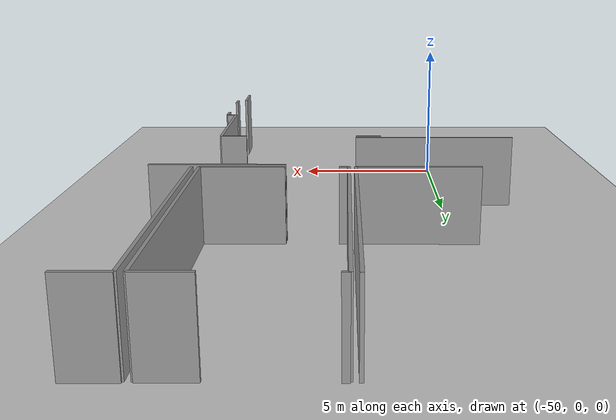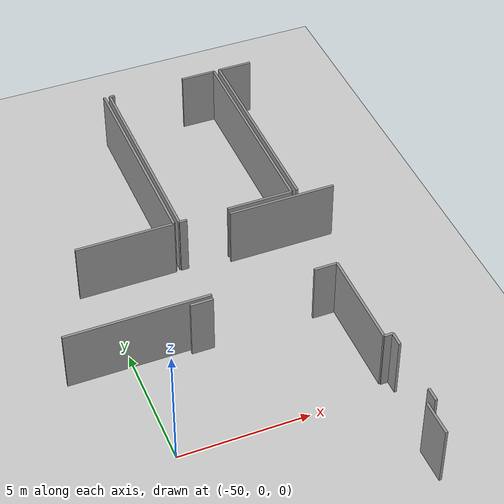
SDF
<sdf version="1.6">
 <world name="default">
  <model name="ground_plane">
   <static>1</static>
   <link name="link">
    <collision name="collision">
     <geometry><plane><normal>0 0 1</normal><size>100 100</size></plane></geometry>
     <surface><friction><ode><mu>100</mu><mu2>50</mu2></ode></friction></surface>
    </collision>
    <visual name="visual">
     <cast_shadows>0</cast_shadows>
     <geometry><plane><normal>0 0 1</normal><size>100 100</size></plane></geometry>
     <material>
      <script><uri>file://media/materials/scripts/gazebo.material</uri><name>Gazebo/Grey</name></script>
     </material>
    </visual>
   </link>
  </model>
  <model name="50041184">
   <static>1</static>
   <link name="Wall_5">
    <collision name="Wall_5_Collision">
     <geometry><box><size>5.56972470658 0.1 2.5</size></box></geometry>
     <pose>2.78486235329 0 1.25 0 0 0</pose>
    </collision>
    <visual name="Wall_5_Visual">
     <pose>2.78486235329 0 1.25 0 0 0</pose>
     <geometry><box><size>5.56972470658 0.1 2.5</size></box></geometry>
     <material>
      <script><uri>file://media/materials/scripts/gazebo.material</uri><name>Gazebo/Grey</name></script>
      <ambient>1 1 1 1</ambient>
     </material>
    </visual>
    <pose>24.684507525 -12.264743781 0 0 0 3.14159265359</pose>
   </link>
   <link name="Wall_11">
    <collision name="Wall_11_Collision">
     <geometry><box><size>4.26415980602 0.1 2.5</size></box></geometry>
     <pose>2.13207990301 0 1.25 0 0 0</pose>
    </collision>
    <visual name="Wall_11_Visual">
     <pose>2.13207990301 0 1.25 0 0 0</pose>
     <geometry><box><size>4.26415980602 0.1 2.5</size></box></geometry>
     <material>
      <script><uri>file://media/materials/scripts/gazebo.material</uri><name>Gazebo/Grey</name></script>
      <ambient>1 1 1 1</ambient>
     </material>
    </visual>
    <pose>26.8835541224 -8.50813439041 0 0 0 0.0</pose>
   </link>
   <link name="Wall_15">
    <collision name="Wall_15_Collision">
     <geometry><box><size>3.86972280232 0.1 2.5</size></box></geometry>
     <pose>1.93486140116 0 1.25 0 0 0</pose>
    </collision>
    <visual name="Wall_15_Visual">
     <pose>1.93486140116 0 1.25 0 0 0</pose>
     <geometry><box><size>3.86972280232 0.1 2.5</size></box></geometry>
     <material>
      <script><uri>file://media/materials/scripts/gazebo.material</uri><name>Gazebo/Grey</name></script>
      <ambient>1 1 1 1</ambient>
     </material>
    </visual>
    <pose>24.7281786963 -8.23836334668 0 0 0 3.14159265359</pose>
   </link>
   <link name="Wall_20">
    <collision name="Wall_20_Collision">
     <geometry><box><size>8.23838391209 0.1 2.5</size></box></geometry>
     <pose>4.11919195605 0 1.25 0 0 0</pose>
    </collision>
    <visual name="Wall_20_Visual">
     <pose>4.11919195605 0 1.25 0 0 0</pose>
     <geometry><box><size>8.23838391209 0.1 2.5</size></box></geometry>
     <material>
      <script><uri>file://media/materials/scripts/gazebo.material</uri><name>Gazebo/Grey</name></script>
      <ambient>1 1 1 1</ambient>
     </material>
    </visual>
    <pose>24.7097707898 -0.0 0 0 0 -1.56856191747</pose>
   </link>
   <link name="Wall_21">
    <collision name="Wall_21_Collision">
     <geometry><box><size>2.62306320259 0.1 2.5</size></box></geometry>
     <pose>1.3115316013 0 1.25 0 0 0</pose>
    </collision>
    <visual name="Wall_21_Visual">
     <pose>1.3115316013 0 1.25 0 0 0</pose>
     <geometry><box><size>2.62306320259 0.1 2.5</size></box></geometry>
     <material>
      <script><uri>file://media/materials/scripts/gazebo.material</uri><name>Gazebo/Grey</name></script>
      <ambient>1 1 1 1</ambient>
     </material>
    </visual>
    <pose>29.5191854819 -8.23036542868 0 0 0 3.14159265359</pose>
   </link>
   <link name="Wall_22">
    <collision name="Wall_22_Collision">
     <geometry><box><size>0.307348563231 0.1 2.5</size></box></geometry>
     <pose>0.153674281616 0 1.25 0 0 0</pose>
    </collision>
    <visual name="Wall_22_Visual">
     <pose>0.153674281616 0 1.25 0 0 0</pose>
     <geometry><box><size>0.307348563231 0.1 2.5</size></box></geometry>
     <material>
      <script><uri>file://media/materials/scripts/gazebo.material</uri><name>Gazebo/Grey</name></script>
      <ambient>1 1 1 1</ambient>
     </material>
    </visual>
    <pose>25.2467738557 -8.23036542868 0 0 0 3.14159265359</pose>
   </link>
   <link name="Wall_23">
    <collision name="Wall_23_Collision">
     <geometry><box><size>8.20269009337 0.1 2.5</size></box></geometry>
     <pose>4.10134504669 0 1.25 0 0 0</pose>
    </collision>
    <visual name="Wall_23_Visual">
     <pose>4.10134504669 0 1.25 0 0 0</pose>
     <geometry><box><size>8.20269009337 0.1 2.5</size></box></geometry>
     <material>
      <script><uri>file://media/materials/scripts/gazebo.material</uri><name>Gazebo/Grey</name></script>
      <ambient>1 1 1 1</ambient>
     </material>
    </visual>
    <pose>24.9394252925 -8.23036542868 0 0 0 1.57079632679</pose>
   </link>
   <link name="Wall_24">
    <collision name="Wall_24_Collision">
     <geometry><box><size>0.19525076012 0.1 2.5</size></box></geometry>
     <pose>0.0976253800598 0 1.25 0 0 0</pose>
    </collision>
    <visual name="Wall_24_Visual">
     <pose>0.0976253800598 0 1.25 0 0 0</pose>
     <geometry><box><size>0.19525076012 0.1 2.5</size></box></geometry>
     <material>
      <script><uri>file://media/materials/scripts/gazebo.material</uri><name>Gazebo/Grey</name></script>
      <ambient>1 1 1 1</ambient>
     </material>
    </visual>
    <pose>24.9394252925 -0.0276753353095 0 0 0 0.0</pose>
   </link>
   <link name="Wall_25">
    <collision name="Wall_25_Collision">
     <geometry><box><size>1.41829745907 0.1 2.5</size></box></geometry>
     <pose>0.709148729537 0 1.25 0 0 0</pose>
    </collision>
    <visual name="Wall_25_Visual">
     <pose>0.709148729537 0 1.25 0 0 0</pose>
     <geometry><box><size>1.41829745907 0.1 2.5</size></box></geometry>
     <material>
      <script><uri>file://media/materials/scripts/gazebo.material</uri><name>Gazebo/Grey</name></script>
      <ambient>1 1 1 1</ambient>
     </material>
    </visual>
    <pose>28.1010149739 -0.0276753353095 0 0 0 0.0</pose>
   </link>
   <link name="Wall_26">
    <collision name="Wall_26_Collision">
     <geometry><box><size>8.20269009435 0.1 2.5</size></box></geometry>
     <pose>4.10134504718 0 1.25 0 0 0</pose>
    </collision>
    <visual name="Wall_26_Visual">
     <pose>4.10134504718 0 1.25 0 0 0</pose>
     <geometry><box><size>8.20269009435 0.1 2.5</size></box></geometry>
     <material>
      <script><uri>file://media/materials/scripts/gazebo.material</uri><name>Gazebo/Grey</name></script>
      <ambient>1 1 1 1</ambient>
     </material>
    </visual>
    <pose>29.519312433 -0.0276753353095 0 0 0 -1.57081180356</pose>
   </link>
   <link name="Wall_29">
    <collision name="Wall_29_Collision">
     <geometry><box><size>8.20738728331 0.1 2.5</size></box></geometry>
     <pose>4.10369364166 0 1.25 0 0 0</pose>
    </collision>
    <visual name="Wall_29_Visual">
     <pose>4.10369364166 0 1.25 0 0 0</pose>
     <geometry><box><size>8.20738728331 0.1 2.5</size></box></geometry>
     <material>
      <script><uri>file://media/materials/scripts/gazebo.material</uri><name>Gazebo/Grey</name></script>
      <ambient>1 1 1 1</ambient>
     </material>
    </visual>
    <pose>29.7591230219 -8.22414482579 0 0 0 1.57079632679</pose>
   </link>
   <link name="Wall_30">
    <collision name="Wall_30_Collision">
     <geometry><box><size>1.37691140719 0.1 2.5</size></box></geometry>
     <pose>0.688455703595 0 1.25 0 0 0</pose>
    </collision>
    <visual name="Wall_30_Visual">
     <pose>0.688455703595 0 1.25 0 0 0</pose>
     <geometry><box><size>1.37691140719 0.1 2.5</size></box></geometry>
     <material>
      <script><uri>file://media/materials/scripts/gazebo.material</uri><name>Gazebo/Grey</name></script>
      <ambient>1 1 1 1</ambient>
     </material>
    </visual>
    <pose>29.7591230219 -0.016757542481 0 0 0 0.0</pose>
   </link>
   <link name="Wall_289">
    <collision name="Wall_289_Collision">
     <geometry><box><size>0.877231958665 0.1 2.5</size></box></geometry>
     <pose>0.438615979332 0 1.25 0 0 0</pose>
    </collision>
    <visual name="Wall_289_Visual">
     <pose>0.438615979332 0 1.25 0 0 0</pose>
     <geometry><box><size>0.877231958665 0.1 2.5</size></box></geometry>
     <material>
      <script><uri>file://media/materials/scripts/gazebo.material</uri><name>Gazebo/Grey</name></script>
      <ambient>1 1 1 1</ambient>
     </material>
    </visual>
    <pose>23.7849321764 -12.4776407411 0 0 0 0.0</pose>
   </link>
   <link name="Wall_290">
    <collision name="Wall_290_Collision">
     <geometry><box><size>0.909858386071 0.1 2.5</size></box></geometry>
     <pose>0.454929193035 0 1.25 0 0 0</pose>
    </collision>
    <visual name="Wall_290_Visual">
     <pose>0.454929193035 0 1.25 0 0 0</pose>
     <geometry><box><size>0.909858386071 0.1 2.5</size></box></geometry>
     <material>
      <script><uri>file://media/materials/scripts/gazebo.material</uri><name>Gazebo/Grey</name></script>
      <ambient>1 1 1 1</ambient>
     </material>
    </visual>
    <pose>28.5929504066 -12.4776407411 0 0 0 0.0</pose>
   </link>
   <link name="Wall_291">
    <collision name="Wall_291_Collision">
     <geometry><box><size>3.92012238084 0.1 2.5</size></box></geometry>
     <pose>1.96006119042 0 1.25 0 0 0</pose>
    </collision>
    <visual name="Wall_291_Visual">
     <pose>1.96006119042 0 1.25 0 0 0</pose>
     <geometry><box><size>3.92012238084 0.1 2.5</size></box></geometry>
     <material>
      <script><uri>file://media/materials/scripts/gazebo.material</uri><name>Gazebo/Grey</name></script>
      <ambient>1 1 1 1</ambient>
     </material>
    </visual>
    <pose>29.5028087926 -12.4776407411 0 0 0 -1.57079632679</pose>
   </link>
   <link name="Wall_292">
    <collision name="Wall_292_Collision">
     <geometry><box><size>0.338324626605 0.1 2.5</size></box></geometry>
     <pose>0.169162313303 0 1.25 0 0 0</pose>
    </collision>
    <visual name="Wall_292_Visual">
     <pose>0.169162313303 0 1.25 0 0 0</pose>
     <geometry><box><size>0.338324626605 0.1 2.5</size></box></geometry>
     <material>
      <script><uri>file://media/materials/scripts/gazebo.material</uri><name>Gazebo/Grey</name></script>
      <ambient>1 1 1 1</ambient>
     </material>
    </visual>
    <pose>29.5028087926 -16.397763122 0 0 0 0.0</pose>
   </link>
   <link name="Wall_293">
    <collision name="Wall_293_Collision">
     <geometry><box><size>0.561758526352 0.1 2.5</size></box></geometry>
     <pose>0.280879263176 0 1.25 0 0 0</pose>
    </collision>
    <visual name="Wall_293_Visual">
     <pose>0.280879263176 0 1.25 0 0 0</pose>
     <geometry><box><size>0.561758526352 0.1 2.5</size></box></geometry>
     <material>
      <script><uri>file://media/materials/scripts/gazebo.material</uri><name>Gazebo/Grey</name></script>
      <ambient>1 1 1 1</ambient>
     </material>
    </visual>
    <pose>29.8411334192 -16.397763122 0 0 0 -1.57079632679</pose>
   </link>
   <link name="Wall_294">
    <collision name="Wall_294_Collision">
     <geometry><box><size>0.551983293238 0.1 2.5</size></box></geometry>
     <pose>0.275991646619 0 1.25 0 0 0</pose>
    </collision>
    <visual name="Wall_294_Visual">
     <pose>0.275991646619 0 1.25 0 0 0</pose>
     <geometry><box><size>0.551983293238 0.1 2.5</size></box></geometry>
     <material>
      <script><uri>file://media/materials/scripts/gazebo.material</uri><name>Gazebo/Grey</name></script>
      <ambient>1 1 1 1</ambient>
     </material>
    </visual>
    <pose>29.8411334192 -19.1405411925 0 0 0 -1.57079632679</pose>
   </link>
   <link name="Wall_296">
    <collision name="Wall_296_Collision">
     <geometry><box><size>1.38399826878 0.1 2.5</size></box></geometry>
     <pose>0.691999134388 0 1.25 0 0 0</pose>
    </collision>
    <visual name="Wall_296_Visual">
     <pose>0.691999134388 0 1.25 0 0 0</pose>
     <geometry><box><size>1.38399826878 0.1 2.5</size></box></geometry>
     <material>
      <script><uri>file://media/materials/scripts/gazebo.material</uri><name>Gazebo/Grey</name></script>
      <ambient>1 1 1 1</ambient>
     </material>
    </visual>
    <pose>29.4940491682 -19.6925244857 0 0 0 -1.55850449565</pose>
   </link>
   <pose>-71.6 16.80775925 0 0 0 0</pose>
  </model>
 </world>
</sdf>
